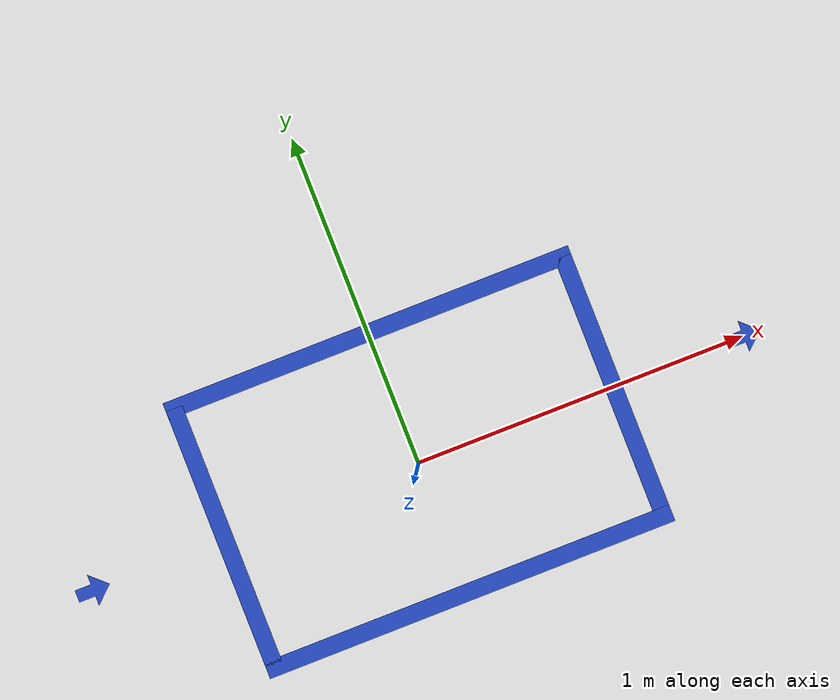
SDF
<?xml version='1.0'?>
<sdf version='1.6'>
  <model name='waitSpotWDirection'>
    <model name='directionArrow'>
      <link name='link_0'>
        <inertial>
          <mass>1</mass>
          <inertia>
            <ixx>0.166667</ixx>
            <ixy>0</ixy>
            <ixz>0</ixz>
            <iyy>0.166667</iyy>
            <iyz>0</iyz>
            <izz>0.166667</izz>
          </inertia>
          <pose frame=''>0 0 0 0 -0 0</pose>
        </inertial>
        <pose frame=''>0 0 0 0 -0 0</pose>
        <gravity>1</gravity>
        <self_collide>0</self_collide>
        <kinematic>0</kinematic>
        <enable_wind>0</enable_wind>
        <visual name='visual'>
          <pose frame=''>-0.05 0.018 0 0 -0 -1.5708</pose>
          <geometry>
            <mesh>
              <uri>model://directionArrow/model/model.dae</uri>
              <scale>0.024 0.024 0.0001</scale>
            </mesh>
          </geometry>
          <material>
            <lighting>1</lighting>
            <script>
              <uri>file://media/materials/scripts/gazebo.material</uri>
              <name>Gazebo/Blue</name>
            </script>
          </material>
        </visual>
        <collision name='collision'>
          <laser_retro>0</laser_retro>
          <max_contacts>10</max_contacts>
          <pose frame=''>0 0 0 0 -0 0</pose>
          <geometry>
            <box>
              <size>0.1 0.1 0.001</size>
            </box>
          </geometry>
          <surface>
            <friction>
              <ode>
                <mu>1</mu>
                <mu2>1</mu2>
                <fdir1>0 0 0</fdir1>
                <slip1>0</slip1>
                <slip2>0</slip2>
              </ode>
              <torsional>
                <coefficient>1</coefficient>
                <patch_radius>0</patch_radius>
                <surface_radius>0</surface_radius>
                <use_patch_radius>1</use_patch_radius>
                <ode>
                  <slip>0</slip>
                </ode>
              </torsional>
            </friction>
            <bounce>
              <restitution_coefficient>0</restitution_coefficient>
              <threshold>1e+06</threshold>
            </bounce>
            <contact>
              <collide_without_contact>0</collide_without_contact>
              <collide_without_contact_bitmask>1</collide_without_contact_bitmask>
              <collide_bitmask>1</collide_bitmask>
              <ode>
                <soft_cfm>0</soft_cfm>
                <soft_erp>0.2</soft_erp>
                <kp>1e+13</kp>
                <kd>1</kd>
                <max_vel>0.01</max_vel>
                <min_depth>0</min_depth>
              </ode>
              <bullet>
                <split_impulse>1</split_impulse>
                <split_impulse_penetration_threshold>-0.01</split_impulse_penetration_threshold>
                <soft_cfm>0</soft_cfm>
                <soft_erp>0.2</soft_erp>
                <kp>1e+13</kp>
                <kd>1</kd>
              </bullet>
            </contact>
          </surface>
        </collision>
      </link>
      <static>1</static>
      <allow_auto_disable>1</allow_auto_disable>
      <pose frame=''>-1.00461 -0.000715 0 0 -0 0</pose>
    </model>
    <model name='directionArrow_0'>
      <link name='link_0'>
        <inertial>
          <mass>1</mass>
          <inertia>
            <ixx>0.166667</ixx>
            <ixy>0</ixy>
            <ixz>0</ixz>
            <iyy>0.166667</iyy>
            <iyz>0</iyz>
            <izz>0.166667</izz>
          </inertia>
          <pose frame=''>0 0 0 0 -0 0</pose>
        </inertial>
        <pose frame=''>0 0 0 0 -0 0</pose>
        <gravity>1</gravity>
        <self_collide>0</self_collide>
        <kinematic>0</kinematic>
        <enable_wind>0</enable_wind>
        <visual name='visual'>
          <pose frame=''>-0.05 0.018 0 0 -0 -1.5708</pose>
          <geometry>
            <mesh>
              <uri>model://directionArrow/model/model.dae</uri>
              <scale>0.024 0.024 0.0001</scale>
            </mesh>
          </geometry>
          <material>
            <lighting>1</lighting>
            <script>
              <uri>file://media/materials/scripts/gazebo.material</uri>
              <name>Gazebo/Blue</name>
            </script>
          </material>
        </visual>
        <collision name='collision'>
          <laser_retro>0</laser_retro>
          <max_contacts>10</max_contacts>
          <pose frame=''>0 0 0 0 -0 0</pose>
          <geometry>
            <box>
              <size>0.1 0.1 0.001</size>
            </box>
          </geometry>
          <surface>
            <friction>
              <ode>
                <mu>1</mu>
                <mu2>1</mu2>
                <fdir1>0 0 0</fdir1>
                <slip1>0</slip1>
                <slip2>0</slip2>
              </ode>
              <torsional>
                <coefficient>1</coefficient>
                <patch_radius>0</patch_radius>
                <surface_radius>0</surface_radius>
                <use_patch_radius>1</use_patch_radius>
                <ode>
                  <slip>0</slip>
                </ode>
              </torsional>
            </friction>
            <bounce>
              <restitution_coefficient>0</restitution_coefficient>
              <threshold>1e+06</threshold>
            </bounce>
            <contact>
              <collide_without_contact>0</collide_without_contact>
              <collide_without_contact_bitmask>1</collide_without_contact_bitmask>
              <collide_bitmask>1</collide_bitmask>
              <ode>
                <soft_cfm>0</soft_cfm>
                <soft_erp>0.2</soft_erp>
                <kp>1e+13</kp>
                <kd>1</kd>
                <max_vel>0.01</max_vel>
                <min_depth>0</min_depth>
              </ode>
              <bullet>
                <split_impulse>1</split_impulse>
                <split_impulse_penetration_threshold>-0.01</split_impulse_penetration_threshold>
                <soft_cfm>0</soft_cfm>
                <soft_erp>0.2</soft_erp>
                <kp>1e+13</kp>
                <kd>1</kd>
              </bullet>
            </contact>
          </surface>
        </collision>
      </link>
      <static>1</static>
      <allow_auto_disable>1</allow_auto_disable>
      <pose frame=''>1.00339 -0.000935 0 0 -0 0</pose>
    </model>
    <model name='waitSpot'>
      <link name='link_4'>
        <inertial>
          <mass>1</mass>
          <inertia>
            <ixx>0.166667</ixx>
            <ixy>0</ixy>
            <ixz>0</ixz>
            <iyy>0.166667</iyy>
            <iyz>0</iyz>
            <izz>0.166667</izz>
          </inertia>
          <pose frame=''>0 0 0 0 -0 0</pose>
        </inertial>
        <pose frame=''>0 0 0 0 -0 0</pose>
        <gravity>1</gravity>
        <self_collide>0</self_collide>
        <kinematic>0</kinematic>
        <enable_wind>0</enable_wind>
        <visual name='ModelPreview_8::link_4::visual_3'>
          <pose frame=''>-0.6 0 0 0 -0 0</pose>
          <geometry>
            <box>
              <size>0.05 0.8 0.0001</size>
            </box>
          </geometry>
          <material>
            <lighting>1</lighting>
            <script>
              <uri>file://media/materials/scripts/gazebo.material</uri>
              <name>Gazebo/Blue</name>
            </script>
          </material>
        </visual>
        <visual name='ModelPreview_8::link_4::visual_1'>
          <pose frame=''>0 -0.4 0 0 -0 0</pose>
          <geometry>
            <box>
              <size>1.25 0.05 0.0001</size>
            </box>
          </geometry>
          <material>
            <lighting>1</lighting>
            <script>
              <uri>file://media/materials/scripts/gazebo.material</uri>
              <name>Gazebo/Blue</name>
            </script>
          </material>
        </visual>
        <visual name='ModelPreview_8::link_4::visual_2'>
          <pose frame=''>0.6 0 0 0 -0 0</pose>
          <geometry>
            <box>
              <size>0.05 0.8 0.0001</size>
            </box>
          </geometry>
          <material>
            <lighting>1</lighting>
            <script>
              <uri>file://media/materials/scripts/gazebo.material</uri>
              <name>Gazebo/Blue</name>
            </script>
          </material>
        </visual>
        <visual name='visual'>
          <pose frame=''>0 0.4 0 0 -0 0</pose>
          <geometry>
            <box>
              <size>1.25 0.05 0.0001</size>
            </box>
          </geometry>
          <material>
            <lighting>1</lighting>
            <script>
              <uri>file://media/materials/scripts/gazebo.material</uri>
              <name>Gazebo/Blue</name>
            </script>
          </material>
        </visual>
        <collision name='collision_2'>
          <laser_retro>0</laser_retro>
          <max_contacts>10</max_contacts>
          <pose frame=''>0.6 0 0 0 -0 0</pose>
          <geometry>
            <box>
              <size>0.05 0.8 0.0001</size>
            </box>
          </geometry>
          <surface>
            <friction>
              <ode>
                <mu>1</mu>
                <mu2>1</mu2>
                <fdir1>0 0 0</fdir1>
                <slip1>0</slip1>
                <slip2>0</slip2>
              </ode>
              <torsional>
                <coefficient>1</coefficient>
                <patch_radius>0</patch_radius>
                <surface_radius>0</surface_radius>
                <use_patch_radius>1</use_patch_radius>
                <ode>
                  <slip>0</slip>
                </ode>
              </torsional>
            </friction>
            <bounce>
              <restitution_coefficient>0</restitution_coefficient>
              <threshold>1e+06</threshold>
            </bounce>
            <contact>
              <collide_without_contact>0</collide_without_contact>
              <collide_without_contact_bitmask>1</collide_without_contact_bitmask>
              <collide_bitmask>1</collide_bitmask>
              <ode>
                <soft_cfm>0</soft_cfm>
                <soft_erp>0.2</soft_erp>
                <kp>1e+13</kp>
                <kd>1</kd>
                <max_vel>0.01</max_vel>
                <min_depth>0</min_depth>
              </ode>
              <bullet>
                <split_impulse>1</split_impulse>
                <split_impulse_penetration_threshold>-0.01</split_impulse_penetration_threshold>
                <soft_cfm>0</soft_cfm>
                <soft_erp>0.2</soft_erp>
                <kp>1e+13</kp>
                <kd>1</kd>
              </bullet>
            </contact>
          </surface>
        </collision>
        <collision name='collision'>
          <laser_retro>0</laser_retro>
          <max_contacts>10</max_contacts>
          <pose frame=''>0 0.4 0 0 -0 0</pose>
          <geometry>
            <box>
              <size>1.25 0.05 0.0001</size>
            </box>
          </geometry>
          <surface>
            <friction>
              <ode>
                <mu>1</mu>
                <mu2>1</mu2>
                <fdir1>0 0 0</fdir1>
                <slip1>0</slip1>
                <slip2>0</slip2>
              </ode>
              <torsional>
                <coefficient>1</coefficient>
                <patch_radius>0</patch_radius>
                <surface_radius>0</surface_radius>
                <use_patch_radius>1</use_patch_radius>
                <ode>
                  <slip>0</slip>
                </ode>
              </torsional>
            </friction>
            <bounce>
              <restitution_coefficient>0</restitution_coefficient>
              <threshold>1e+06</threshold>
            </bounce>
            <contact>
              <collide_without_contact>0</collide_without_contact>
              <collide_without_contact_bitmask>1</collide_without_contact_bitmask>
              <collide_bitmask>1</collide_bitmask>
              <ode>
                <soft_cfm>0</soft_cfm>
                <soft_erp>0.2</soft_erp>
                <kp>1e+13</kp>
                <kd>1</kd>
                <max_vel>0.01</max_vel>
                <min_depth>0</min_depth>
              </ode>
              <bullet>
                <split_impulse>1</split_impulse>
                <split_impulse_penetration_threshold>-0.01</split_impulse_penetration_threshold>
                <soft_cfm>0</soft_cfm>
                <soft_erp>0.2</soft_erp>
                <kp>1e+13</kp>
                <kd>1</kd>
              </bullet>
            </contact>
          </surface>
        </collision>
        <collision name='collision_1'>
          <laser_retro>0</laser_retro>
          <max_contacts>10</max_contacts>
          <pose frame=''>0 -0.4 0 0 -0 0</pose>
          <geometry>
            <box>
              <size>1.25 0.05 0.0001</size>
            </box>
          </geometry>
          <surface>
            <friction>
              <ode>
                <mu>1</mu>
                <mu2>1</mu2>
                <fdir1>0 0 0</fdir1>
                <slip1>0</slip1>
                <slip2>0</slip2>
              </ode>
              <torsional>
                <coefficient>1</coefficient>
                <patch_radius>0</patch_radius>
                <surface_radius>0</surface_radius>
                <use_patch_radius>1</use_patch_radius>
                <ode>
                  <slip>0</slip>
                </ode>
              </torsional>
            </friction>
            <bounce>
              <restitution_coefficient>0</restitution_coefficient>
              <threshold>1e+06</threshold>
            </bounce>
            <contact>
              <collide_without_contact>0</collide_without_contact>
              <collide_without_contact_bitmask>1</collide_without_contact_bitmask>
              <collide_bitmask>1</collide_bitmask>
              <ode>
                <soft_cfm>0</soft_cfm>
                <soft_erp>0.2</soft_erp>
                <kp>1e+13</kp>
                <kd>1</kd>
                <max_vel>0.01</max_vel>
                <min_depth>0</min_depth>
              </ode>
              <bullet>
                <split_impulse>1</split_impulse>
                <split_impulse_penetration_threshold>-0.01</split_impulse_penetration_threshold>
                <soft_cfm>0</soft_cfm>
                <soft_erp>0.2</soft_erp>
                <kp>1e+13</kp>
                <kd>1</kd>
              </bullet>
            </contact>
          </surface>
        </collision>
        <collision name='collision_3'>
          <laser_retro>0</laser_retro>
          <max_contacts>10</max_contacts>
          <pose frame=''>-0.6 0 0 0 -0 0</pose>
          <geometry>
            <box>
              <size>0.05 0.8 0.0001</size>
            </box>
          </geometry>
          <surface>
            <friction>
              <ode>
                <mu>1</mu>
                <mu2>1</mu2>
                <fdir1>0 0 0</fdir1>
                <slip1>0</slip1>
                <slip2>0</slip2>
              </ode>
              <torsional>
                <coefficient>1</coefficient>
                <patch_radius>0</patch_radius>
                <surface_radius>0</surface_radius>
                <use_patch_radius>1</use_patch_radius>
                <ode>
                  <slip>0</slip>
                </ode>
              </torsional>
            </friction>
            <bounce>
              <restitution_coefficient>0</restitution_coefficient>
              <threshold>1e+06</threshold>
            </bounce>
            <contact>
              <collide_without_contact>0</collide_without_contact>
              <collide_without_contact_bitmask>1</collide_without_contact_bitmask>
              <collide_bitmask>1</collide_bitmask>
              <ode>
                <soft_cfm>0</soft_cfm>
                <soft_erp>0.2</soft_erp>
                <kp>1e+13</kp>
                <kd>1</kd>
                <max_vel>0.01</max_vel>
                <min_depth>0</min_depth>
              </ode>
              <bullet>
                <split_impulse>1</split_impulse>
                <split_impulse_penetration_threshold>-0.01</split_impulse_penetration_threshold>
                <soft_cfm>0</soft_cfm>
                <soft_erp>0.2</soft_erp>
                <kp>1e+13</kp>
                <kd>1</kd>
              </bullet>
            </contact>
          </surface>
        </collision>
      </link>
      <static>1</static>
      <allow_auto_disable>1</allow_auto_disable>
      <pose frame=''>0.001226 0.00165 0 0 -0 0</pose>
    </model>
    <static>1</static>
    <allow_auto_disable>1</allow_auto_disable>
  </model>
</sdf>
